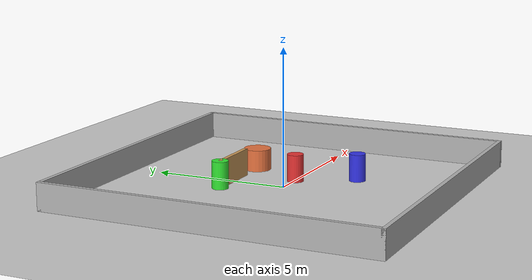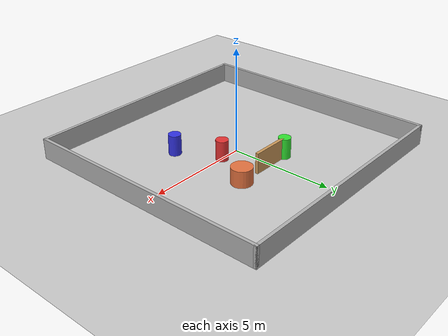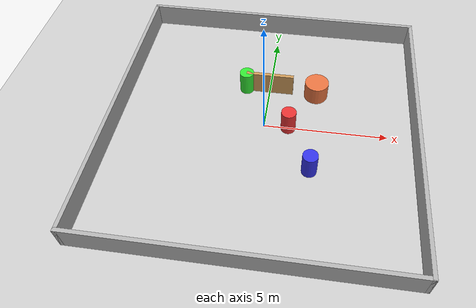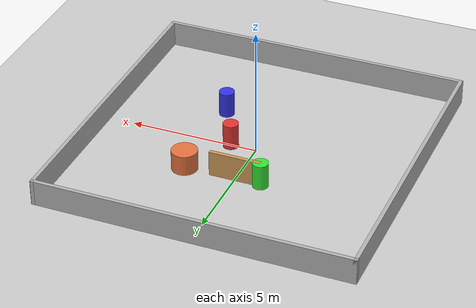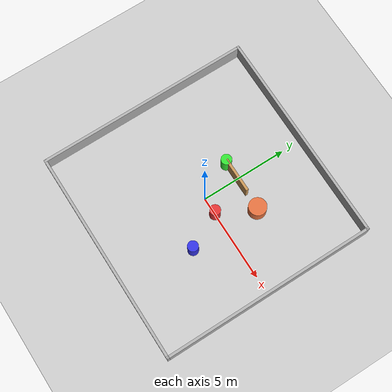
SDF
<?xml version="1.0" ?>
<sdf version="1.8">
  <world name="training_world_12x12">

    <physics name="1ms" type="ode">
      <max_step_size>0.001</max_step_size>
      <real_time_factor>1.0</real_time_factor>
      <real_time_update_rate>1000</real_time_update_rate>
    </physics>

    <plugin filename="gz-sim-physics-system" name="gz::sim::systems::Physics"/>
    <plugin filename="gz-sim-scene-broadcaster-system" name="gz::sim::systems::SceneBroadcaster"/>
    <plugin filename="gz-sim-user-commands-system" name="gz::sim::systems::UserCommands"/>
    <plugin filename="gz-sim-sensors-system" name="gz::sim::systems::Sensors">
      <render_engine>ogre2</render_engine>
    </plugin>
    <plugin filename="gz-sim-imu-system" name="gz::sim::systems::Imu"/>
    <plugin filename="gz-sim-contact-system" name="gz::sim::systems::Contact"/>

    <light type="directional" name="sun">
      <cast_shadows>true</cast_shadows>
      <pose>0 0 10 0 0 0</pose>
      <diffuse>0.8 0.8 0.8 1</diffuse>
      <specular>0.2 0.2 0.2 1</specular>
      <attenuation>
        <range>1000</range>
        <constant>0.9</constant>
        <linear>0.01</linear>
        <quadratic>0.001</quadratic>
      </attenuation>
      <direction>-0.5 0.1 -0.9</direction>
    </light>

    <!-- ============ 地面 ============ -->
    <model name="ground_plane">
      <static>true</static>
      <link name="link">
        <collision name="collision">
          <geometry>
            <plane>
              <normal>0 0 1</normal>
              <size>20 20</size>
            </plane>
          </geometry>
        </collision>
        <visual name="visual">
          <geometry>
            <plane>
              <normal>0 0 1</normal>
              <size>20 20</size>
            </plane>
          </geometry>
          <material>
            <ambient>0.8 0.8 0.8 1</ambient>
            <diffuse>0.8 0.8 0.8 1</diffuse>
          </material>
        </visual>
      </link>
    </model>

    <!-- ============ 四面围墙 ============ -->
    <model name="wall_north">
      <static>true</static>
      <pose>0 6.075 0.5 0 0 0</pose>
      <link name="link">
        <collision name="collision">
          <geometry><box><size>12.3 0.15 1.0</size></box></geometry>
        </collision>
        <visual name="visual">
          <geometry><box><size>12.3 0.15 1.0</size></box></geometry>
          <material>
            <ambient>0.6 0.6 0.6 1</ambient>
            <diffuse>0.7 0.7 0.7 1</diffuse>
          </material>
        </visual>
      </link>
    </model>

    <model name="wall_south">
      <static>true</static>
      <pose>0 -6.075 0.5 0 0 0</pose>
      <link name="link">
        <collision name="collision">
          <geometry><box><size>12.3 0.15 1.0</size></box></geometry>
        </collision>
        <visual name="visual">
          <geometry><box><size>12.3 0.15 1.0</size></box></geometry>
          <material>
            <ambient>0.6 0.6 0.6 1</ambient>
            <diffuse>0.7 0.7 0.7 1</diffuse>
          </material>
        </visual>
      </link>
    </model>

    <model name="wall_east">
      <static>true</static>
      <pose>6.075 0 0.5 0 0 0</pose>
      <link name="link">
        <collision name="collision">
          <geometry><box><size>0.15 12.3 1.0</size></box></geometry>
        </collision>
        <visual name="visual">
          <geometry><box><size>0.15 12.3 1.0</size></box></geometry>
          <material>
            <ambient>0.6 0.6 0.6 1</ambient>
            <diffuse>0.7 0.7 0.7 1</diffuse>
          </material>
        </visual>
      </link>
    </model>

    <model name="wall_west">
      <static>true</static>
      <pose>-6.075 0 0.5 0 0 0</pose>
      <link name="link">
        <collision name="collision">
          <geometry><box><size>0.15 12.3 1.0</size></box></geometry>
        </collision>
        <visual name="visual">
          <geometry><box><size>0.15 12.3 1.0</size></box></geometry>
          <material>
            <ambient>0.6 0.6 0.6 1</ambient>
            <diffuse>0.7 0.7 0.7 1</diffuse>
          </material>
        </visual>
      </link>
    </model>

    <!-- ============ 新增: 内部障碍物 ============ -->

    <!-- 中央圆柱: 正好在 (0,0)->(4,4) 对角线上 -->
    <!-- APF 弱点: 目标引力直指圆柱，斥力正好反向，两力共线产生局部极小值 -->
    <model name="obstacle_pillar">
      <static>true</static>
      <pose>2.0 2.0 0.4 0 0 0</pose>
      <link name="link">
        <collision name="collision">
          <geometry>
            <cylinder>
              <radius>0.5</radius>
              <length>0.8</length>
            </cylinder>
          </geometry>
        </collision>
        <visual name="visual">
          <geometry>
            <cylinder>
              <radius>0.5</radius>
              <length>0.8</length>
            </cylinder>
          </geometry>
          <material>
            <ambient>0.8 0.4 0.2 1</ambient>
            <diffuse>0.9 0.45 0.25 1</diffuse>
          </material>
        </visual>
      </link>
    </model>

    <!-- 短横墙: 与圆柱配合形成瓶颈 -->
    <!-- 挡住绕圆柱左边走的路径，逼迫机器人做决策 -->
    <model name="obstacle_wall_short">
      <static>true</static>
      <pose>0.0 2.0 0.5 0 0 0</pose>
      <link name="link">
        <collision name="collision">
          <geometry>
            <box>
              <size>2.0 0.15 1.0</size>
            </box>
          </geometry>
        </collision>
        <visual name="visual">
          <geometry>
            <box>
              <size>2.0 0.15 1.0</size>
            </box>
          </geometry>
          <material>
            <ambient>0.75 0.55 0.3 1</ambient>
            <diffuse>0.8 0.6 0.35 1</diffuse>
          </material>
        </visual>
      </link>
    </model>

    <!-- ============ 3个行人 (圆柱体, static=false) ============ -->
    <!-- 行人由外部 ROS 节点控制移动位置 -->

    <!-- 行人1: 红色, 起点(1, 0) -->
    <model name="pedestrian_1">
      <static>false</static>
      <pose>1.0 0.0 0.5 0 0 0</pose>
      <link name="base_link">
        <inertial>
          <mass>20.0</mass>
          <inertia>
            <ixx>0.5</ixx><ixy>0</ixy><ixz>0</ixz>
            <iyy>0.5</iyy><iyz>0</iyz>
            <izz>0.5</izz>
          </inertia>
        </inertial>
        <collision name="collision">
          <geometry>
            <cylinder>
              <radius>0.3</radius>
              <length>1.0</length>
            </cylinder>
          </geometry>
        </collision>
        <visual name="visual">
          <geometry>
            <cylinder>
              <radius>0.3</radius>
              <length>1.0</length>
            </cylinder>
          </geometry>
          <material>
            <ambient>0.9 0.2 0.2 1</ambient>
            <diffuse>0.9 0.2 0.2 1</diffuse>
          </material>
        </visual>
      </link>
    </model>

    <!-- 行人2: 绿色, 起点(-1, 2) -->
    <model name="pedestrian_2">
      <static>false</static>
      <pose>-1.0 2.0 0.5 0 0 0</pose>
      <link name="base_link">
        <inertial>
          <mass>20.0</mass>
          <inertia>
            <ixx>0.5</ixx><ixy>0</ixy><ixz>0</ixz>
            <iyy>0.5</iyy><iyz>0</iyz>
            <izz>0.5</izz>
          </inertia>
        </inertial>
        <collision name="collision">
          <geometry>
            <cylinder>
              <radius>0.3</radius>
              <length>1.0</length>
            </cylinder>
          </geometry>
        </collision>
        <visual name="visual">
          <geometry>
            <cylinder>
              <radius>0.3</radius>
              <length>1.0</length>
            </cylinder>
          </geometry>
          <material>
            <ambient>0.2 0.9 0.2 1</ambient>
            <diffuse>0.2 0.9 0.2 1</diffuse>
          </material>
        </visual>
      </link>
    </model>

    <!-- 行人3: 蓝色, 起点(2, -2) -->
    <model name="pedestrian_3">
      <static>false</static>
      <pose>2.0 -2.0 0.5 0 0 0</pose>
      <link name="base_link">
        <inertial>
          <mass>20.0</mass>
          <inertia>
            <ixx>0.5</ixx><ixy>0</ixy><ixz>0</ixz>
            <iyy>0.5</iyy><iyz>0</iyz>
            <izz>0.5</izz>
          </inertia>
        </inertial>
        <collision name="collision">
          <geometry>
            <cylinder>
              <radius>0.3</radius>
              <length>1.0</length>
            </cylinder>
          </geometry>
        </collision>
        <visual name="visual">
          <geometry>
            <cylinder>
              <radius>0.3</radius>
              <length>1.0</length>
            </cylinder>
          </geometry>
          <material>
            <ambient>0.2 0.2 0.9 1</ambient>
            <diffuse>0.2 0.2 0.9 1</diffuse>
          </material>
        </visual>
      </link>
    </model>

  </world>
</sdf>
